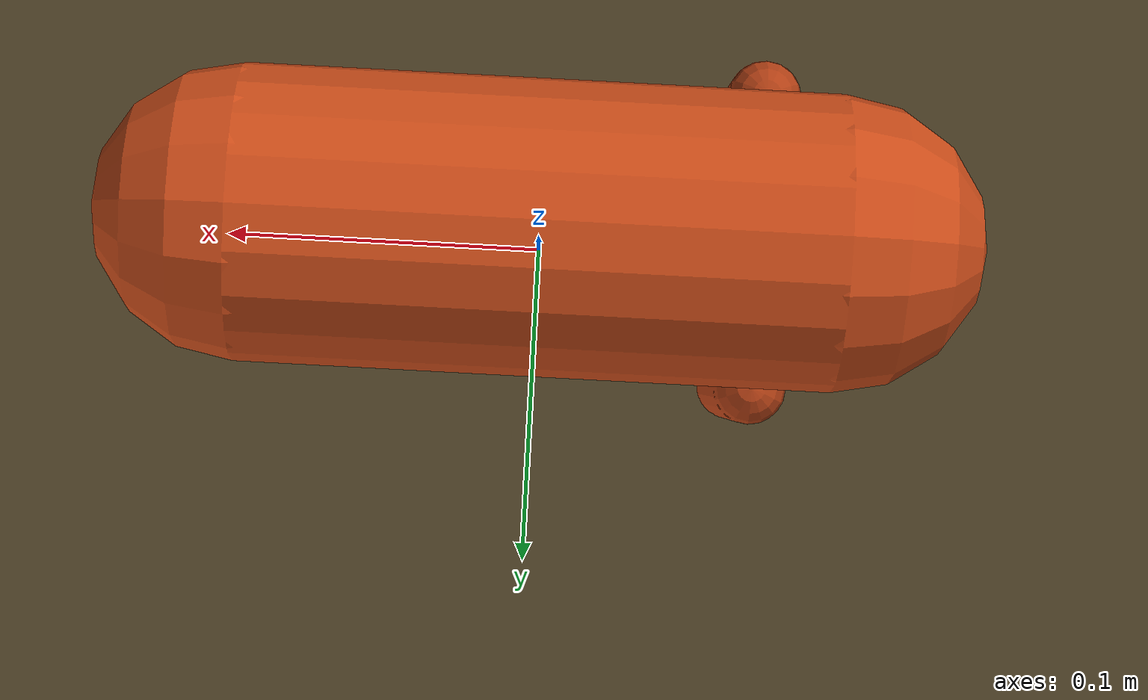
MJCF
<mujoco model="neurolobster_v1">
  <compiler angle="radian" meshdir="." texturedir="."/>
  <option timestep="0.002" gravity="0 0 -9.81"/>
  <worldbody>
    <light pos="0 0 2" dir="0 0 -1"/>
    <geom name="floor" type="plane" size="5 5 0.1" rgba="0.3 0.25 0.15 1"/>
    <!-- Simple box body — mesh will be added later -->
    <body name="torso" pos="0 0 0.15">
      <freejoint name="root"/>
      <geom name="body" type="capsule" size="0.04 0.08"
            euler="0 1.5708 0" rgba="0.8 0.3 0.1 1" mass="1.0"/>
      <!-- 4 legs placeholder -->
      <body name="leg_L1" pos="-0.06 0.04 -0.02">
        <joint name="j_L1" type="hinge" axis="0 1 0" range="-0.8 0.8"/>
        <geom type="capsule" size="0.01 0.04" pos="0 0 -0.04" rgba="0.7 0.25 0.08 1" mass="0.02"/>
      </body>
      <body name="leg_R1" pos="-0.06 -0.04 -0.02">
        <joint name="j_R1" type="hinge" axis="0 1 0" range="-0.8 0.8"/>
        <geom type="capsule" size="0.01 0.04" pos="0 0 -0.04" rgba="0.7 0.25 0.08 1" mass="0.02"/>
      </body>
    </body>
  </worldbody>
  <actuator>
    <motor name="a_L1" joint="j_L1" gear="1" ctrllimited="true" ctrlrange="-1 1"/>
    <motor name="a_R1" joint="j_R1" gear="1" ctrllimited="true" ctrlrange="-1 1"/>
  </actuator>
</mujoco>
